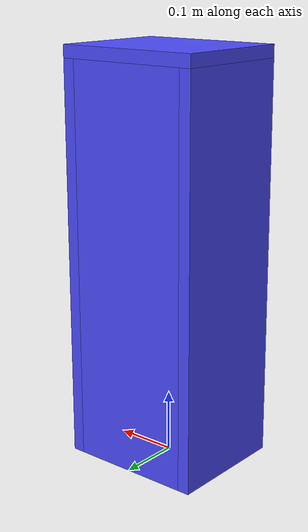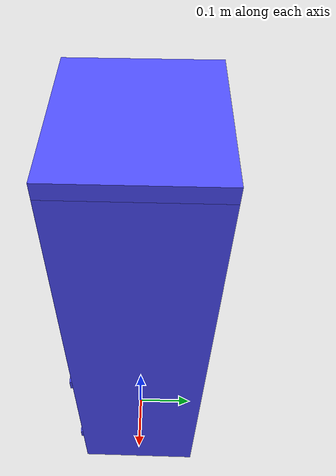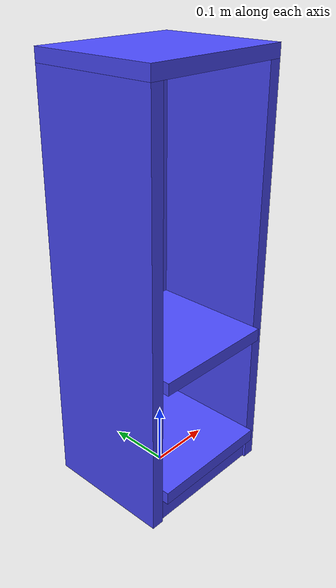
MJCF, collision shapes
<mujoco>
    <compiler angle="radian" inertiafromgeom="auto" inertiagrouprange="4 5"/>
    <asset>
        <texture name="T_shelf_wood" type="cube" file="../textures/wood1.png"/>

        <material name="shelf_col" rgba="0.3 0.3 1.0 0.5" shininess="0" specular="0"/>
        <material name="shelf_white" rgba=".85 .85 .85 1" shininess="1" reflectance=".7" specular=".5"/>
        <material name="shelf_wood" texture="T_shelf_wood" shininess="1" reflectance="1" specular=".5"/>

        <mesh file="../objects/meshes/shelf/shelf.stl" name="shelf"/>
        <mesh file="../objects/meshes/shelf/shelf_supports.stl" name="shelf_supports"/>
    </asset>
    <default>

      <default class="shelf_base">
          <joint armature="0.001" damping="2" limited="true"/>
          <geom conaffinity="0" contype="0" group="1" type="mesh"/>
          <position ctrllimited="true" ctrlrange="0 1.57"/>
          <default class="shelf_viz">
              <geom condim="4" type="mesh"/>
          </default>
          <default class="shelf_col">
              <geom conaffinity="1" condim="3" contype="0" group="4" material="shelf_col" solimp="0.99 0.99 0.01" solref="0.01 1"/>
          </default>
          <default class="block_col">
              <geom conaffinity="1" condim="3" contype="1s" group="4" material="shelf_col" solimp="0.99 0.99 0.01" solref="0.01 1"/>
          </default>
      </default>
    </default>

    <worldbody>
        <body name="shelf" pos="0 0 0">
            <body childclass="shelf_base">
                <geom material="shelf_wood" mesh="shelf" pos="0 -0.015 0.24"/>
                <geom material="shelf_white" mesh="shelf_supports" pos="0 0 0.04"/>

                <!-- left wall -->
                <geom class="shelf_col" pos="-0.11 0 0.32" size="0.01 0.1 0.32" type="box"/>
                <!-- right wall -->
                <geom class="shelf_col" pos="0.11 0 0.32" size="0.01 0.1 0.32" type="box"/>
                <!-- top wall -->
                <geom class="shelf_col" pos="0 0 0.65" size="0.12 0.1 0.01" type="box"/>
                <!-- middle shelf -->
                <geom class="shelf_col" pos="0 -0.015 0.24" size="0.1 0.095 0.01" type="box"/>
                <!-- bottom shelf -->
                <geom class="shelf_col" pos="0 -0.015 0.05" size="0.1 0.095 0.01" type="box"/>
                <!-- back wall -->
                <geom class="shelf_col" pos="0 0.09 0.32" size="0.1 0.01 0.32" type="box"/>
                <!-- bottom wall underneath bottom shelf -->
                <geom class="shelf_col" pos="0.0 -0.008 0.021" size="0.1 0.088 0.021" type="box"/>
            </body>
        </body>
    </worldbody>
</mujoco>
